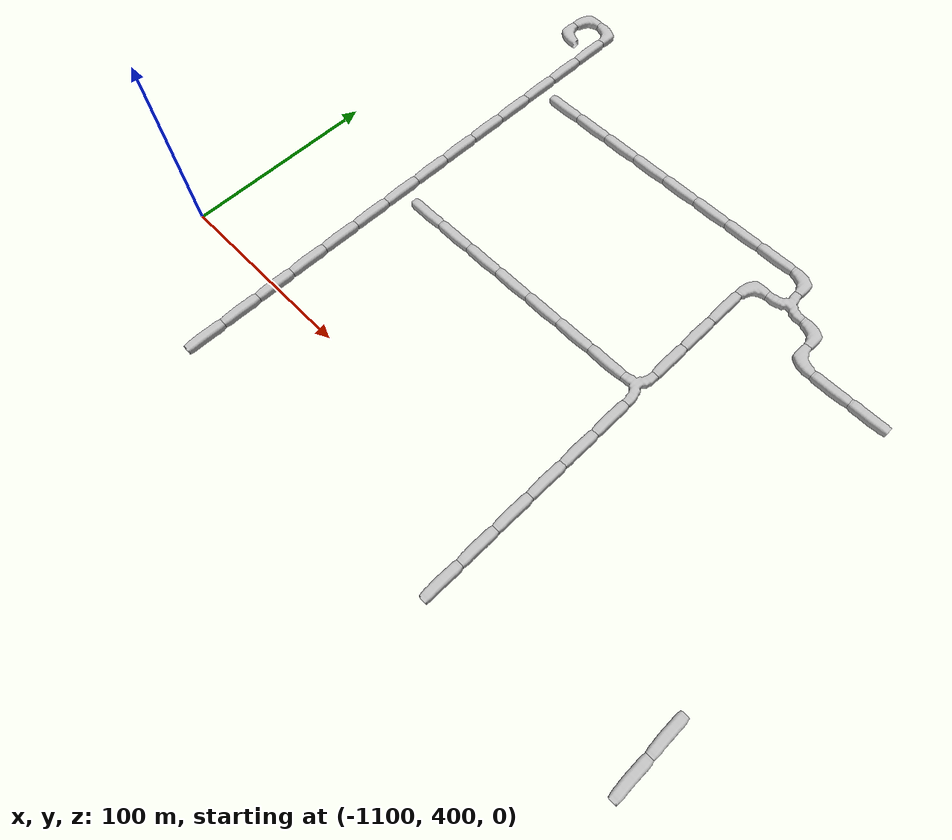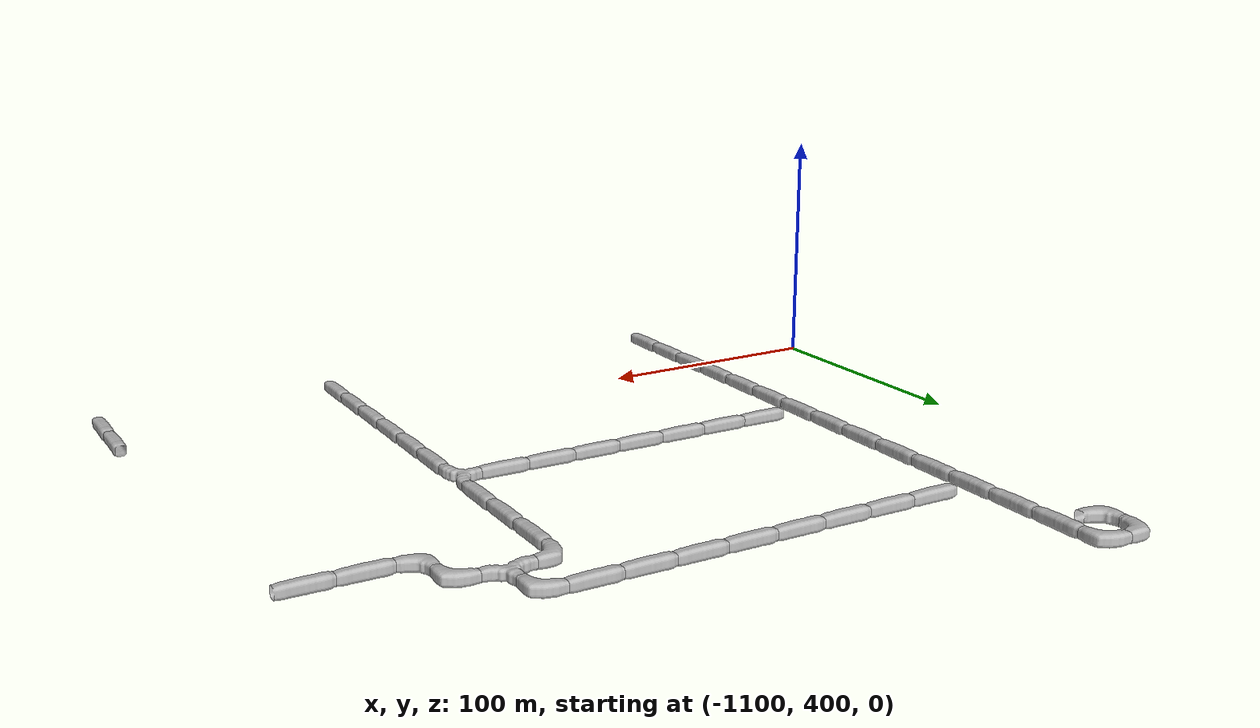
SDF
<sdf version="1.6">
 <world name="cave_16000">
  <include>
   <static>true</static>
   <name>cave_-52_18</name>
   <pose>-1040 360 0 0 0 0.0</pose>
   <uri>model://cave_straight_20m</uri>
  </include>
  <include>
   <static>true</static>
   <name>cave_-52_19</name>
   <pose>-1040 380 0 0 0 0.0</pose>
   <uri>model://cave_straight_20m</uri>
  </include>
  <include>
   <static>true</static>
   <name>cave_-52_20</name>
   <pose>-1040 400 0 0 0 0.0</pose>
   <uri>model://cave_straight_20m</uri>
  </include>
  <include>
   <static>true</static>
   <name>cave_-52_21</name>
   <pose>-1040 420 0 0 0 0.0</pose>
   <uri>model://cave_straight_20m</uri>
  </include>
  <include>
   <static>true</static>
   <name>cave_-52_22</name>
   <pose>-1040 440 0 0 0 0.0</pose>
   <uri>model://cave_straight_20m</uri>
  </include>
  <include>
   <static>true</static>
   <name>cave_-52_23</name>
   <pose>-1040 460 0 0 0 0.0</pose>
   <uri>model://cave_straight_20m</uri>
  </include>
  <include>
   <static>true</static>
   <name>cave_-52_24</name>
   <pose>-1040 480 0 0 0 0.0</pose>
   <uri>model://cave_straight_20m</uri>
  </include>
  <include>
   <static>true</static>
   <name>cave_-52_25</name>
   <pose>-1040 500 0 0 0 0.0</pose>
   <uri>model://cave_straight_20m</uri>
  </include>
  <include>
   <static>true</static>
   <name>cave_-52_26</name>
   <pose>-1040 520 0 0 0 0.0</pose>
   <uri>model://cave_straight_20m</uri>
  </include>
  <include>
   <static>true</static>
   <name>cave_-52_27</name>
   <pose>-1040 540 0 0 0 0.0</pose>
   <uri>model://cave_straight_20m</uri>
  </include>
  <include>
   <static>true</static>
   <name>cave_-52_28</name>
   <pose>-1040 560 0 0 0 0.0</pose>
   <uri>model://cave_straight_20m</uri>
  </include>
  <include>
   <static>true</static>
   <name>cave_-52_29</name>
   <pose>-1040 580 0 0 0 0.0</pose>
   <uri>model://cave_straight_20m</uri>
  </include>
  <include>
   <static>true</static>
   <name>cave_-52_30</name>
   <pose>-1040 600 0 0 0 0.0</pose>
   <uri>model://cave_straight_20m</uri>
  </include>
  <include>
   <static>true</static>
   <name>cave_-52_31</name>
   <pose>-1040 620 0 0 0 0.0</pose>
   <uri>model://cave_straight_20m</uri>
  </include>
  <include>
   <static>true</static>
   <name>cave_-52_32</name>
   <pose>-1040 640 0 0 0 3.141592653589793</pose>
   <uri>model://cave_L_20m</uri>
  </include>
  <include>
   <static>true</static>
   <name>cave_-53_32</name>
   <pose>-1060 640 0 0 0 -1.5707963267948966</pose>
   <uri>model://cave_L_20m</uri>
  </include>
  <include>
   <static>true</static>
   <name>cave_-53_31</name>
   <pose>-1060 620 0 0 0 0.0</pose>
   <uri>model://cave_L_20m</uri>
  </include>
  <include>
   <static>true</static>
   <name>cave_-39_19</name>
   <pose>-780 380 0 0 0 0.0</pose>
   <uri>model://cave_straight_20m</uri>
  </include>
  <include>
   <static>true</static>
   <name>cave_-39_18</name>
   <pose>-780 360 0 0 0 0.0</pose>
   <uri>model://cave_straight_20m</uri>
  </include>
  <include>
   <static>true</static>
   <name>cave_-40_27</name>
   <pose>-800 540 0 0 0 1.5707963267948966</pose>
   <uri>model://cave_straight_20m</uri>
  </include>
  <include>
   <static>true</static>
   <name>cave_-41_27</name>
   <pose>-820 540 0 0 0 1.5707963267948966</pose>
   <uri>model://cave_straight_20m</uri>
  </include>
  <include>
   <static>true</static>
   <name>cave_-42_27</name>
   <pose>-840 540 0 0 0 0.0</pose>
   <uri>model://cave_L_20m</uri>
  </include>
  <include>
   <static>true</static>
   <name>cave_-42_28</name>
   <pose>-840 560 0 0 0 3.141592653589793</pose>
   <uri>model://cave_L_20m</uri>
  </include>
  <include>
   <static>true</static>
   <name>cave_-43_28</name>
   <pose>-860 560 0 0 0 0.0</pose>
   <uri>model://cave_3way_20m</uri>
  </include>
  <include>
   <static>true</static>
   <name>cave_-44_28</name>
   <pose>-880 560 0 0 0 -1.5707963267948966</pose>
   <uri>model://cave_L_20m</uri>
  </include>
  <include>
   <static>true</static>
   <name>cave_-44_27</name>
   <pose>-880 540 0 0 0 0.0</pose>
   <uri>model://cave_straight_20m</uri>
  </include>
  <include>
   <static>true</static>
   <name>cave_-44_26</name>
   <pose>-880 520 0 0 0 0.0</pose>
   <uri>model://cave_straight_20m</uri>
  </include>
  <include>
   <static>true</static>
   <name>cave_-44_25</name>
   <pose>-880 500 0 0 0 0.0</pose>
   <uri>model://cave_straight_20m</uri>
  </include>
  <include>
   <static>true</static>
   <name>cave_-44_24</name>
   <pose>-880 480 0 0 0 1.5707963267948966</pose>
   <uri>model://cave_3way_20m</uri>
  </include>
  <include>
   <static>true</static>
   <name>cave_-44_23</name>
   <pose>-880 460 0 0 0 0.0</pose>
   <uri>model://cave_straight_20m</uri>
  </include>
  <include>
   <static>true</static>
   <name>cave_-44_22</name>
   <pose>-880 440 0 0 0 0.0</pose>
   <uri>model://cave_straight_20m</uri>
  </include>
  <include>
   <static>true</static>
   <name>cave_-44_21</name>
   <pose>-880 420 0 0 0 0.0</pose>
   <uri>model://cave_straight_20m</uri>
  </include>
  <include>
   <static>true</static>
   <name>cave_-44_20</name>
   <pose>-880 400 0 0 0 0.0</pose>
   <uri>model://cave_straight_20m</uri>
  </include>
  <include>
   <static>true</static>
   <name>cave_-44_19</name>
   <pose>-880 380 0 0 0 0.0</pose>
   <uri>model://cave_straight_20m</uri>
  </include>
  <include>
   <static>true</static>
   <name>cave_-44_18</name>
   <pose>-880 360 0 0 0 0.0</pose>
   <uri>model://cave_straight_20m</uri>
  </include>
  <include>
   <static>true</static>
   <name>cave_-45_24</name>
   <pose>-900 480 0 0 0 1.5707963267948966</pose>
   <uri>model://cave_straight_20m</uri>
  </include>
  <include>
   <static>true</static>
   <name>cave_-46_24</name>
   <pose>-920 480 0 0 0 1.5707963267948966</pose>
   <uri>model://cave_straight_20m</uri>
  </include>
  <include>
   <static>true</static>
   <name>cave_-47_24</name>
   <pose>-940 480 0 0 0 1.5707963267948966</pose>
   <uri>model://cave_straight_20m</uri>
  </include>
  <include>
   <static>true</static>
   <name>cave_-48_24</name>
   <pose>-960 480 0 0 0 1.5707963267948966</pose>
   <uri>model://cave_straight_20m</uri>
  </include>
  <include>
   <static>true</static>
   <name>cave_-49_24</name>
   <pose>-980 480 0 0 0 1.5707963267948966</pose>
   <uri>model://cave_straight_20m</uri>
  </include>
  <include>
   <static>true</static>
   <name>cave_-50_24</name>
   <pose>-1000 480 0 0 0 1.5707963267948966</pose>
   <uri>model://cave_straight_20m</uri>
  </include>
  <include>
   <static>true</static>
   <name>cave_-51_24</name>
   <pose>-1020 480 0 0 0 1.5707963267948966</pose>
   <uri>model://cave_straight_20m</uri>
  </include>
  <include>
   <static>true</static>
   <name>cave_-43_29</name>
   <pose>-860 580 0 0 0 3.141592653589793</pose>
   <uri>model://cave_L_20m</uri>
  </include>
  <include>
   <static>true</static>
   <name>cave_-44_29</name>
   <pose>-880 580 0 0 0 1.5707963267948966</pose>
   <uri>model://cave_straight_20m</uri>
  </include>
  <include>
   <static>true</static>
   <name>cave_-45_29</name>
   <pose>-900 580 0 0 0 1.5707963267948966</pose>
   <uri>model://cave_straight_20m</uri>
  </include>
  <include>
   <static>true</static>
   <name>cave_-46_29</name>
   <pose>-920 580 0 0 0 1.5707963267948966</pose>
   <uri>model://cave_straight_20m</uri>
  </include>
  <include>
   <static>true</static>
   <name>cave_-47_29</name>
   <pose>-940 580 0 0 0 1.5707963267948966</pose>
   <uri>model://cave_straight_20m</uri>
  </include>
  <include>
   <static>true</static>
   <name>cave_-48_29</name>
   <pose>-960 580 0 0 0 1.5707963267948966</pose>
   <uri>model://cave_straight_20m</uri>
  </include>
  <include>
   <static>true</static>
   <name>cave_-49_29</name>
   <pose>-980 580 0 0 0 1.5707963267948966</pose>
   <uri>model://cave_straight_20m</uri>
  </include>
  <include>
   <static>true</static>
   <name>cave_-50_29</name>
   <pose>-1000 580 0 0 0 1.5707963267948966</pose>
   <uri>model://cave_straight_20m</uri>
  </include>
  <include>
   <static>true</static>
   <name>cave_-51_29</name>
   <pose>-1020 580 0 0 0 1.5707963267948966</pose>
   <uri>model://cave_straight_20m</uri>
  </include>
 </world>
</sdf>
